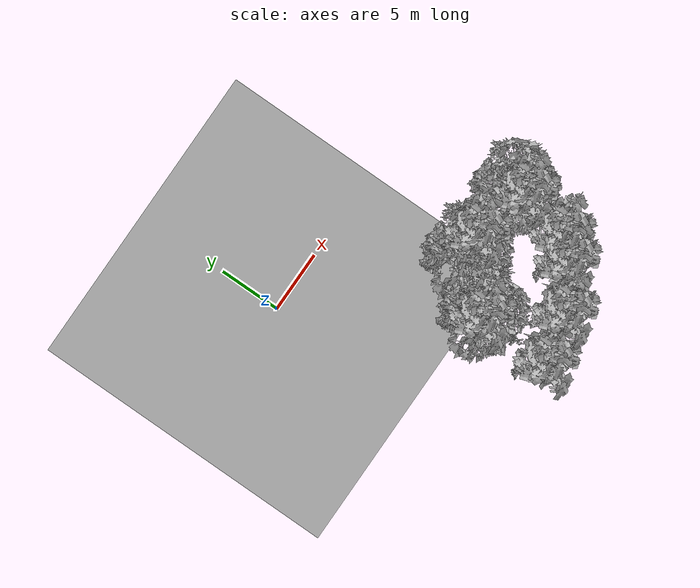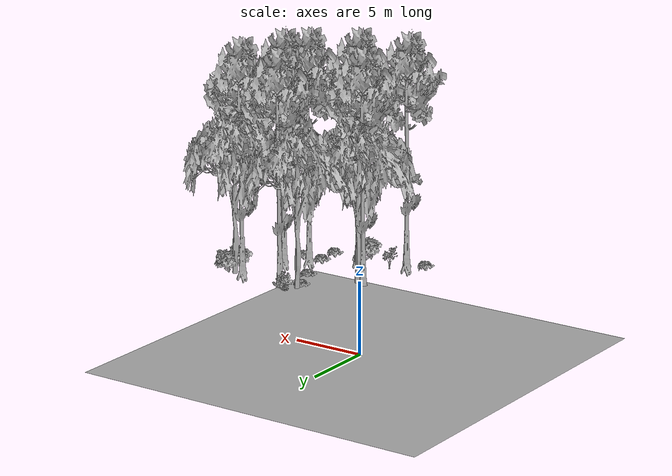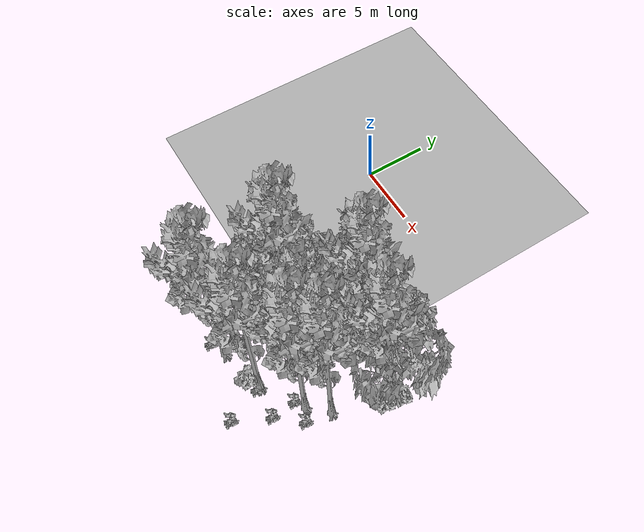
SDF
<sdf version="1.7">
 <world name="default">
  <model name="ground_plane">
   <static>1</static>
   <link name="link">
    <collision name="collision">
     <pose>-50 0 0 0 -0 0</pose>
     <geometry><plane><normal>0 0 1</normal><size>80 80</size></plane></geometry>
     <surface><contact><ode><min_depth>0.01</min_depth><max_vel>0</max_vel></ode></contact></surface>
    </collision>
    <visual name="grass">
     <cast_shadows>0</cast_shadows>
     <geometry>
      <mesh>
       <scale>0.46714285714285714 0.46714285714285714 0.1</scale>
       <uri>file://grass_plane/meshes/grass_plane.dae</uri>
      </mesh>
     </geometry>
    </visual>
   </link>
  </model>
  <model name="Tree 152">
   <static>1</static>
   <pose>11.311093538447075 -8.856968491833328 0 1.57079 -0 0</pose>
   <link name="link">
    <collision name="collision">
     <geometry><mesh><scale>3.5 5 3.5</scale><uri>model://tree_2/meshes/tree_2.obj</uri></mesh></geometry>
    </collision>
    <visual name="visual">
     <geometry><mesh><scale>3.5 5 3.5</scale><uri>model://tree_2/meshes/tree_2.obj</uri></mesh></geometry>
    </visual>
   </link>
  </model>
  <model name="Tree 214">
   <static>1</static>
   <pose>14.481751385066325 -14.55366821109699 0 1.57079 -0 0</pose>
   <link name="link">
    <collision name="collision">
     <geometry><mesh><scale>3.5 5 3.5</scale><uri>model://tree_9/meshes/tree_9.obj</uri></mesh></geometry>
    </collision>
    <visual name="visual">
     <geometry><mesh><scale>3.5 5 3.5</scale><uri>model://tree_9/meshes/tree_9.obj</uri></mesh></geometry>
    </visual>
   </link>
  </model>
  <model name="Tree 248">
   <static>1</static>
   <pose>11.514905659423484 -16.47659061965788 0 1.57079 -0 0</pose>
   <link name="link">
    <collision name="collision">
     <geometry><mesh><scale>3.5 5 3.5</scale><uri>model://tree_9/meshes/tree_9.obj</uri></mesh></geometry>
    </collision>
    <visual name="visual">
     <geometry><mesh><scale>3.5 5 3.5</scale><uri>model://tree_9/meshes/tree_9.obj</uri></mesh></geometry>
    </visual>
   </link>
  </model>
  <model name="Tree 363">
   <static>1</static>
   <pose>12.58438829458403 -8.382381115951905 0 1.57079 -0 0</pose>
   <link name="link">
    <collision name="collision">
     <geometry><mesh><scale>3.5 5 3.5</scale><uri>model://tree_9/meshes/tree_9.obj</uri></mesh></geometry>
    </collision>
    <visual name="visual">
     <geometry><mesh><scale>3.5 5 3.5</scale><uri>model://tree_9/meshes/tree_9.obj</uri></mesh></geometry>
    </visual>
   </link>
  </model>
  <model name="Tree 398">
   <static>1</static>
   <pose>16.716849083041268 -9.51153547823802 0 1.57079 -0 0</pose>
   <link name="link">
    <collision name="collision">
     <geometry><mesh><scale>3.5 5 3.5</scale><uri>model://tree_9/meshes/tree_9.obj</uri></mesh></geometry>
    </collision>
    <visual name="visual">
     <geometry><mesh><scale>3.5 5 3.5</scale><uri>model://tree_9/meshes/tree_9.obj</uri></mesh></geometry>
    </visual>
   </link>
  </model>
  <model name="Tree 417">
   <static>1</static>
   <pose>7.936434146681982 -17.388035893639866 0 1.57079 -0 0</pose>
   <link name="link">
    <collision name="collision">
     <geometry><mesh><scale>3.5 5 3.5</scale><uri>model://tree_9/meshes/tree_9.obj</uri></mesh></geometry>
    </collision>
    <visual name="visual">
     <geometry><mesh><scale>3.5 5 3.5</scale><uri>model://tree_9/meshes/tree_9.obj</uri></mesh></geometry>
    </visual>
   </link>
  </model>
  <model name="Tree 434">
   <static>1</static>
   <pose>16.915207887220504 -9.081836293141585 0 1.57079 -0 0</pose>
   <link name="link">
    <collision name="collision">
     <geometry><mesh><scale>3.5 5 3.5</scale><uri>model://tree_2/meshes/tree_2.obj</uri></mesh></geometry>
    </collision>
    <visual name="visual">
     <geometry><mesh><scale>3.5 5 3.5</scale><uri>model://tree_2/meshes/tree_2.obj</uri></mesh></geometry>
    </visual>
   </link>
  </model>
  <model name="Tree 445">
   <static>1</static>
   <pose>8.538158528236039 -12.239393505948613 0 1.57079 -0 0</pose>
   <link name="link">
    <collision name="collision">
     <geometry><mesh><scale>3.5 5 3.5</scale><uri>model://tree_2/meshes/tree_2.obj</uri></mesh></geometry>
    </collision>
    <visual name="visual">
     <geometry><mesh><scale>3.5 5 3.5</scale><uri>model://tree_2/meshes/tree_2.obj</uri></mesh></geometry>
    </visual>
   </link>
  </model>
  <model name="Tree 517">
   <static>1</static>
   <pose>15.757366047628501 -13.22115174871189 0 1.57079 -0 0</pose>
   <link name="link">
    <collision name="collision">
     <geometry><mesh><scale>3.5 5 3.5</scale><uri>model://tree_9/meshes/tree_9.obj</uri></mesh></geometry>
    </collision>
    <visual name="visual">
     <geometry><mesh><scale>3.5 5 3.5</scale><uri>model://tree_9/meshes/tree_9.obj</uri></mesh></geometry>
    </visual>
   </link>
  </model>
  <model name="Tree 573">
   <static>1</static>
   <pose>7.96691996607408 -11.935684727282137 0 1.57079 -0 0</pose>
   <link name="link">
    <collision name="collision">
     <geometry><mesh><scale>3.5 5 3.5</scale><uri>model://tree_9/meshes/tree_9.obj</uri></mesh></geometry>
    </collision>
    <visual name="visual">
     <geometry><mesh><scale>3.5 5 3.5</scale><uri>model://tree_9/meshes/tree_9.obj</uri></mesh></geometry>
    </visual>
   </link>
  </model>
  <model name="Bush 32">
   <static>1</static>
   <pose>17.466840476525228 -8.918651427789655 0 1.57079 -0 0</pose>
   <link name="link">
    <collision name="collision">
     <geometry><mesh><scale>2 2 2</scale><uri>model://bush_1/meshes/bush_1.obj</uri></mesh></geometry>
     <surface><contact><collide_without_contact>false</collide_without_contact></contact></surface>
    </collision>
    <visual name="visual">
     <geometry><mesh><scale>2 2 2</scale><uri>model://bush_1/meshes/bush_1.obj</uri></mesh></geometry>
    </visual>
   </link>
  </model>
  <model name="Bush 264">
   <static>1</static>
   <pose>10.797988861966338 -17.106713785168424 0 1.57079 -0 0</pose>
   <link name="link">
    <collision name="collision">
     <geometry><mesh><scale>2 2 2</scale><uri>model://bush_1/meshes/bush_1.obj</uri></mesh></geometry>
     <surface><contact><collide_without_contact>false</collide_without_contact></contact></surface>
    </collision>
    <visual name="visual">
     <geometry><mesh><scale>2 2 2</scale><uri>model://bush_1/meshes/bush_1.obj</uri></mesh></geometry>
    </visual>
   </link>
  </model>
  <model name="Bush 295">
   <static>1</static>
   <pose>8.466290953617388 -15.963065953783317 0 1.57079 -0 0</pose>
   <link name="link">
    <collision name="collision">
     <geometry><mesh><scale>2 2 2</scale><uri>model://bush_5/meshes/bush_5.obj</uri></mesh></geometry>
     <surface><contact><collide_without_contact>false</collide_without_contact></contact></surface>
    </collision>
    <visual name="visual">
     <geometry><mesh><scale>2 2 2</scale><uri>model://bush_5/meshes/bush_5.obj</uri></mesh></geometry>
    </visual>
   </link>
  </model>
  <model name="Bush 334">
   <static>1</static>
   <pose>6.598683712935191 -17.898184509073847 0 1.57079 -0 0</pose>
   <link name="link">
    <collision name="collision">
     <geometry><mesh><scale>2 2 2</scale><uri>model://bush_2/meshes/bush_2.obj</uri></mesh></geometry>
     <surface><contact><collide_without_contact>false</collide_without_contact></contact></surface>
    </collision>
    <visual name="visual">
     <geometry><mesh><scale>2 2 2</scale><uri>model://bush_2/meshes/bush_2.obj</uri></mesh></geometry>
    </visual>
   </link>
  </model>
  <model name="Bush 396">
   <static>1</static>
   <pose>13.753967767183518 -16.797463747724173 0 1.57079 -0 0</pose>
   <link name="link">
    <collision name="collision">
     <geometry><mesh><scale>2 2 2</scale><uri>model://bush_2/meshes/bush_2.obj</uri></mesh></geometry>
     <surface><contact><collide_without_contact>false</collide_without_contact></contact></surface>
    </collision>
    <visual name="visual">
     <geometry><mesh><scale>2 2 2</scale><uri>model://bush_2/meshes/bush_2.obj</uri></mesh></geometry>
    </visual>
   </link>
  </model>
  <model name="Bush 444">
   <static>1</static>
   <pose>12.463011876728672 -11.636821766091856 0 1.57079 -0 0</pose>
   <link name="link">
    <collision name="collision">
     <geometry><mesh><scale>2 2 2</scale><uri>model://bush_2/meshes/bush_2.obj</uri></mesh></geometry>
     <surface><contact><collide_without_contact>false</collide_without_contact></contact></surface>
    </collision>
    <visual name="visual">
     <geometry><mesh><scale>2 2 2</scale><uri>model://bush_2/meshes/bush_2.obj</uri></mesh></geometry>
    </visual>
   </link>
  </model>
  <model name="Bush 447">
   <static>1</static>
   <pose>15.2743381979666 -15.051362938117183 0 1.57079 -0 0</pose>
   <link name="link">
    <collision name="collision">
     <geometry><mesh><scale>2 2 2</scale><uri>model://bush_2/meshes/bush_2.obj</uri></mesh></geometry>
     <surface><contact><collide_without_contact>false</collide_without_contact></contact></surface>
    </collision>
    <visual name="visual">
     <geometry><mesh><scale>2 2 2</scale><uri>model://bush_2/meshes/bush_2.obj</uri></mesh></geometry>
    </visual>
   </link>
  </model>
  <model name="Bush 456">
   <static>1</static>
   <pose>11.777865245719873 -7.8310964203092865 0 1.57079 -0 0</pose>
   <link name="link">
    <collision name="collision">
     <geometry><mesh><scale>2 2 2</scale><uri>model://bush_4/meshes/bush_4.obj</uri></mesh></geometry>
     <surface><contact><collide_without_contact>false</collide_without_contact></contact></surface>
    </collision>
    <visual name="visual">
     <geometry><mesh><scale>2 2 2</scale><uri>model://bush_4/meshes/bush_4.obj</uri></mesh></geometry>
    </visual>
   </link>
  </model>
  <model name="Bush 501">
   <static>1</static>
   <pose>11.518613564632346 -9.51261063300307 0 1.57079 -0 0</pose>
   <link name="link">
    <collision name="collision">
     <geometry><mesh><scale>2 2 2</scale><uri>model://bush_2/meshes/bush_2.obj</uri></mesh></geometry>
     <surface><contact><collide_without_contact>false</collide_without_contact></contact></surface>
    </collision>
    <visual name="visual">
     <geometry><mesh><scale>2 2 2</scale><uri>model://bush_2/meshes/bush_2.obj</uri></mesh></geometry>
    </visual>
   </link>
  </model>
  <model name="Bush 527">
   <static>1</static>
   <pose>13.614629054766631 -14.985079849941414 0 1.57079 -0 0</pose>
   <link name="link">
    <collision name="collision">
     <geometry><mesh><scale>2 2 2</scale><uri>model://bush_2/meshes/bush_2.obj</uri></mesh></geometry>
     <surface><contact><collide_without_contact>false</collide_without_contact></contact></surface>
    </collision>
    <visual name="visual">
     <geometry><mesh><scale>2 2 2</scale><uri>model://bush_2/meshes/bush_2.obj</uri></mesh></geometry>
    </visual>
   </link>
  </model>
  <model name="Bush 529">
   <static>1</static>
   <pose>12.49201551154816 -19.321278696778357 0 1.57079 -0 0</pose>
   <link name="link">
    <collision name="collision">
     <geometry><mesh><scale>2 2 2</scale><uri>model://bush_2/meshes/bush_2.obj</uri></mesh></geometry>
     <surface><contact><collide_without_contact>false</collide_without_contact></contact></surface>
    </collision>
    <visual name="visual">
     <geometry><mesh><scale>2 2 2</scale><uri>model://bush_2/meshes/bush_2.obj</uri></mesh></geometry>
    </visual>
   </link>
  </model>
  <model name="Bush 542">
   <static>1</static>
   <pose>11.459826495819456 -16.72922843543877 0 1.57079 -0 0</pose>
   <link name="link">
    <collision name="collision">
     <geometry><mesh><scale>2 2 2</scale><uri>model://bush_2/meshes/bush_2.obj</uri></mesh></geometry>
     <surface><contact><collide_without_contact>false</collide_without_contact></contact></surface>
    </collision>
    <visual name="visual">
     <geometry><mesh><scale>2 2 2</scale><uri>model://bush_2/meshes/bush_2.obj</uri></mesh></geometry>
    </visual>
   </link>
  </model>
  <model name="Bush 619">
   <static>1</static>
   <pose>17.247002811983847 -10.156172528601644 0 1.57079 -0 0</pose>
   <link name="link">
    <collision name="collision">
     <geometry><mesh><scale>2 2 2</scale><uri>model://bush_1/meshes/bush_1.obj</uri></mesh></geometry>
     <surface><contact><collide_without_contact>false</collide_without_contact></contact></surface>
    </collision>
    <visual name="visual">
     <geometry><mesh><scale>2 2 2</scale><uri>model://bush_1/meshes/bush_1.obj</uri></mesh></geometry>
    </visual>
   </link>
  </model>
 </world>
</sdf>
